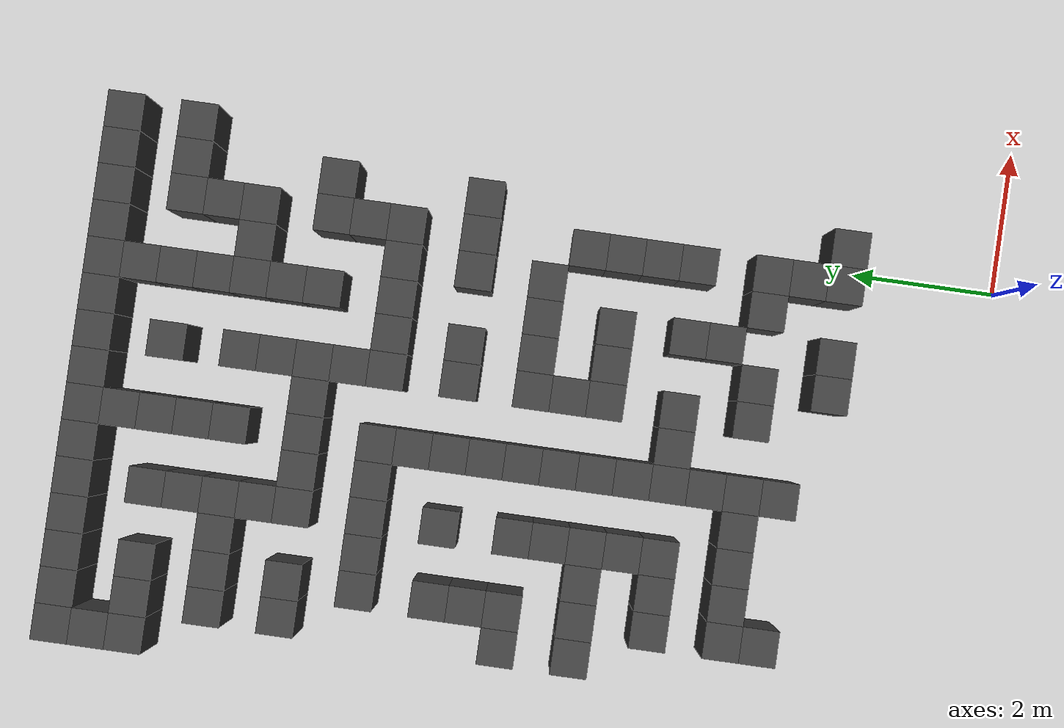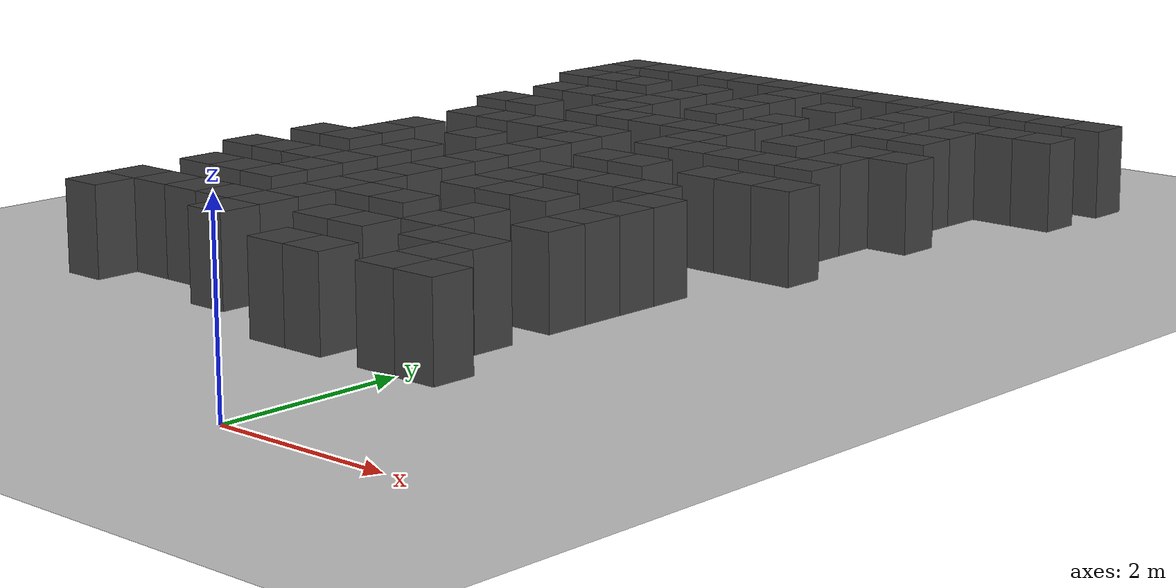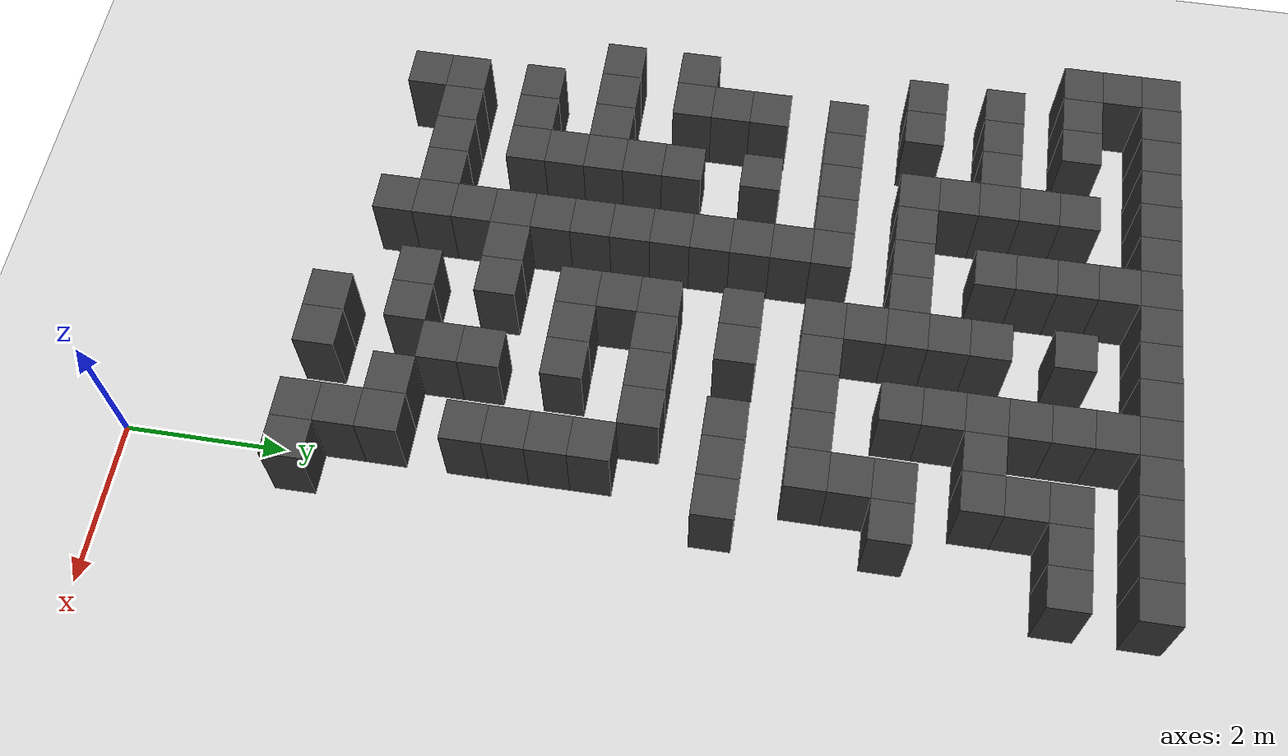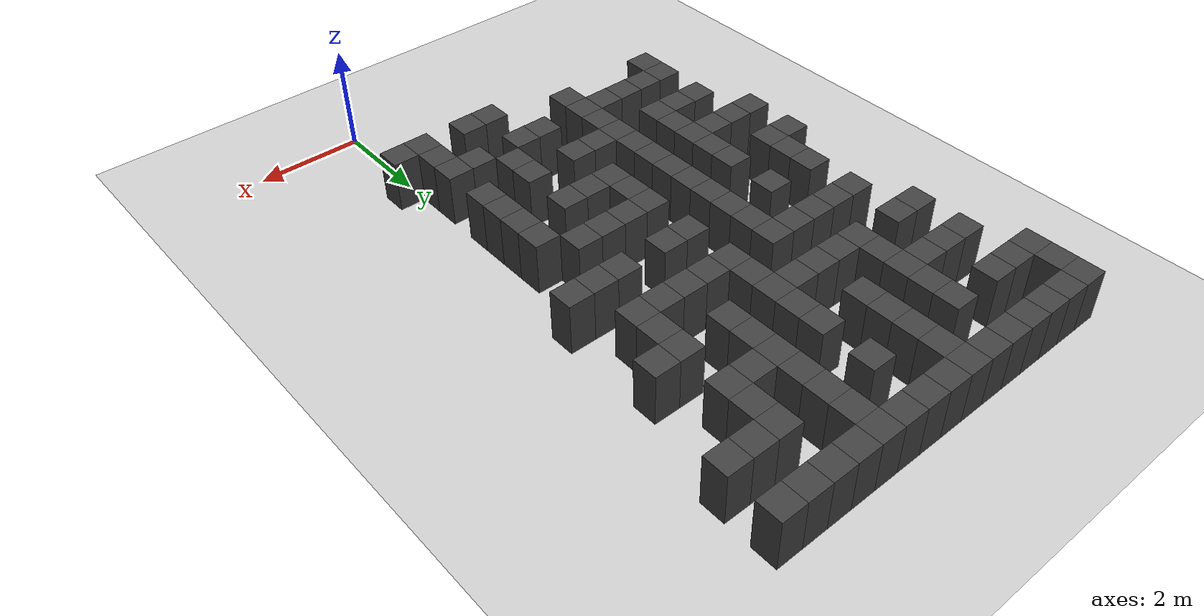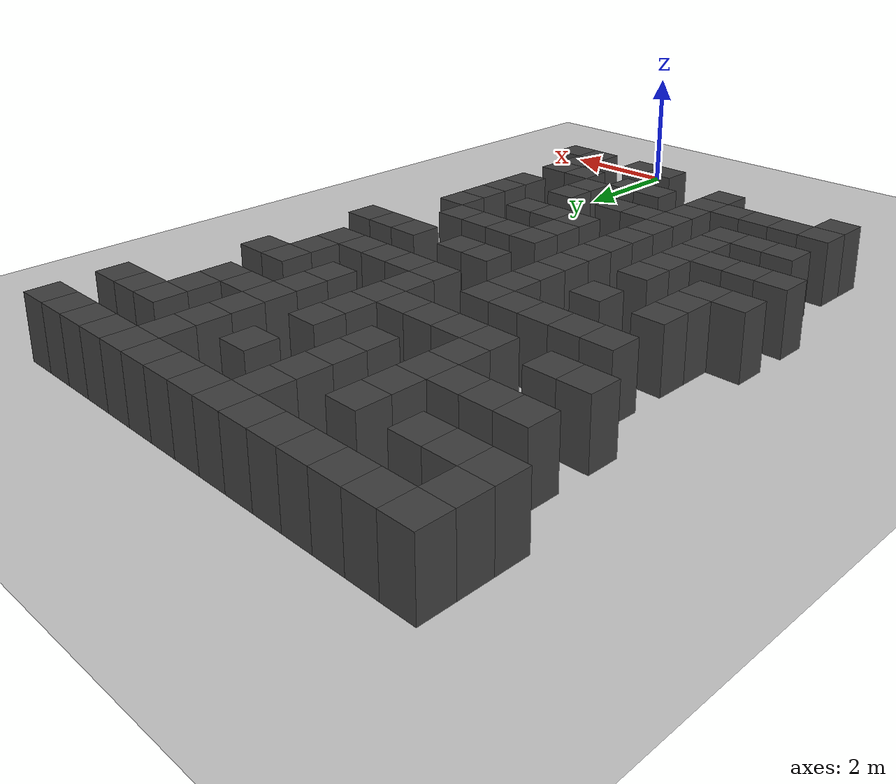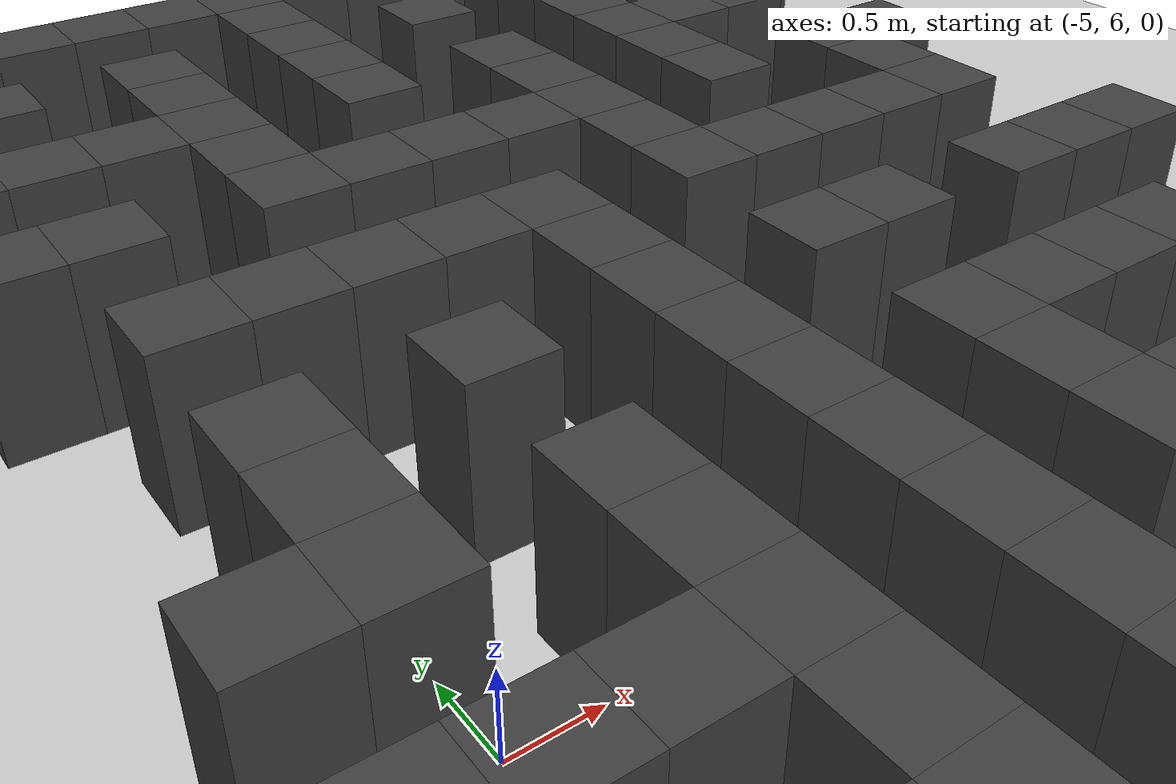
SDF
<sdf version="1.7">
 <world name="map_17663">
  <model name="ground_plane">
   <static>true</static>
   <link name="link">
    <collision name="collision">
     <geometry><plane><normal>0 0 1</normal><size>200 200</size></plane></geometry>
    </collision>
    <visual name="visual">
     <geometry><plane><normal>0 0 1</normal><size>200 200</size></plane></geometry>
     <material><ambient>0.8 0.8 0.8 1</ambient><diffuse>0.8 0.8 0.8 1</diffuse></material>
    </visual>
   </link>
  </model>
  <model name="maze_environment">
   <static>true</static>
   <link name="wall_12">
    <pose>-6.250 12.250 0.500 0 0 0</pose>
    <collision name="col"><geometry><box><size>0.5 0.5 1.0</size></box></geometry></collision>
    <visual name="vis">
     <geometry><box><size>0.5 0.5 1.0</size></box></geometry>
     <material><ambient>0.15 0.15 0.15 1</ambient><diffuse>0.25 0.25 0.25 1</diffuse></material>
    </visual>
   </link>
   <link name="wall_13">
    <pose>-5.750 12.250 0.500 0 0 0</pose>
    <collision name="col"><geometry><box><size>0.5 0.5 1.0</size></box></geometry></collision>
    <visual name="vis">
     <geometry><box><size>0.5 0.5 1.0</size></box></geometry>
     <material><ambient>0.15 0.15 0.15 1</ambient><diffuse>0.25 0.25 0.25 1</diffuse></material>
    </visual>
   </link>
   <link name="wall_14">
    <pose>-5.250 12.250 0.500 0 0 0</pose>
    <collision name="col"><geometry><box><size>0.5 0.5 1.0</size></box></geometry></collision>
    <visual name="vis">
     <geometry><box><size>0.5 0.5 1.0</size></box></geometry>
     <material><ambient>0.15 0.15 0.15 1</ambient><diffuse>0.25 0.25 0.25 1</diffuse></material>
    </visual>
   </link>
   <link name="wall_15">
    <pose>-4.750 12.250 0.500 0 0 0</pose>
    <collision name="col"><geometry><box><size>0.5 0.5 1.0</size></box></geometry></collision>
    <visual name="vis">
     <geometry><box><size>0.5 0.5 1.0</size></box></geometry>
     <material><ambient>0.15 0.15 0.15 1</ambient><diffuse>0.25 0.25 0.25 1</diffuse></material>
    </visual>
   </link>
   <link name="wall_16">
    <pose>-4.250 12.250 0.500 0 0 0</pose>
    <collision name="col"><geometry><box><size>0.5 0.5 1.0</size></box></geometry></collision>
    <visual name="vis">
     <geometry><box><size>0.5 0.5 1.0</size></box></geometry>
     <material><ambient>0.15 0.15 0.15 1</ambient><diffuse>0.25 0.25 0.25 1</diffuse></material>
    </visual>
   </link>
   <link name="wall_17">
    <pose>-3.750 12.250 0.500 0 0 0</pose>
    <collision name="col"><geometry><box><size>0.5 0.5 1.0</size></box></geometry></collision>
    <visual name="vis">
     <geometry><box><size>0.5 0.5 1.0</size></box></geometry>
     <material><ambient>0.15 0.15 0.15 1</ambient><diffuse>0.25 0.25 0.25 1</diffuse></material>
    </visual>
   </link>
   <link name="wall_18">
    <pose>-3.250 12.250 0.500 0 0 0</pose>
    <collision name="col"><geometry><box><size>0.5 0.5 1.0</size></box></geometry></collision>
    <visual name="vis">
     <geometry><box><size>0.5 0.5 1.0</size></box></geometry>
     <material><ambient>0.15 0.15 0.15 1</ambient><diffuse>0.25 0.25 0.25 1</diffuse></material>
    </visual>
   </link>
   <link name="wall_19">
    <pose>-2.750 12.250 0.500 0 0 0</pose>
    <collision name="col"><geometry><box><size>0.5 0.5 1.0</size></box></geometry></collision>
    <visual name="vis">
     <geometry><box><size>0.5 0.5 1.0</size></box></geometry>
     <material><ambient>0.15 0.15 0.15 1</ambient><diffuse>0.25 0.25 0.25 1</diffuse></material>
    </visual>
   </link>
   <link name="wall_20">
    <pose>-2.250 12.250 0.500 0 0 0</pose>
    <collision name="col"><geometry><box><size>0.5 0.5 1.0</size></box></geometry></collision>
    <visual name="vis">
     <geometry><box><size>0.5 0.5 1.0</size></box></geometry>
     <material><ambient>0.15 0.15 0.15 1</ambient><diffuse>0.25 0.25 0.25 1</diffuse></material>
    </visual>
   </link>
   <link name="wall_21">
    <pose>-1.750 12.250 0.500 0 0 0</pose>
    <collision name="col"><geometry><box><size>0.5 0.5 1.0</size></box></geometry></collision>
    <visual name="vis">
     <geometry><box><size>0.5 0.5 1.0</size></box></geometry>
     <material><ambient>0.15 0.15 0.15 1</ambient><diffuse>0.25 0.25 0.25 1</diffuse></material>
    </visual>
   </link>
   <link name="wall_22">
    <pose>-1.250 12.250 0.500 0 0 0</pose>
    <collision name="col"><geometry><box><size>0.5 0.5 1.0</size></box></geometry></collision>
    <visual name="vis">
     <geometry><box><size>0.5 0.5 1.0</size></box></geometry>
     <material><ambient>0.15 0.15 0.15 1</ambient><diffuse>0.25 0.25 0.25 1</diffuse></material>
    </visual>
   </link>
   <link name="wall_23">
    <pose>-0.750 12.250 0.500 0 0 0</pose>
    <collision name="col"><geometry><box><size>0.5 0.5 1.0</size></box></geometry></collision>
    <visual name="vis">
     <geometry><box><size>0.5 0.5 1.0</size></box></geometry>
     <material><ambient>0.15 0.15 0.15 1</ambient><diffuse>0.25 0.25 0.25 1</diffuse></material>
    </visual>
   </link>
   <link name="wall_24">
    <pose>-0.250 12.250 0.500 0 0 0</pose>
    <collision name="col"><geometry><box><size>0.5 0.5 1.0</size></box></geometry></collision>
    <visual name="vis">
     <geometry><box><size>0.5 0.5 1.0</size></box></geometry>
     <material><ambient>0.15 0.15 0.15 1</ambient><diffuse>0.25 0.25 0.25 1</diffuse></material>
    </visual>
   </link>
   <link name="wall_25">
    <pose>0.250 12.250 0.500 0 0 0</pose>
    <collision name="col"><geometry><box><size>0.5 0.5 1.0</size></box></geometry></collision>
    <visual name="vis">
     <geometry><box><size>0.5 0.5 1.0</size></box></geometry>
     <material><ambient>0.15 0.15 0.15 1</ambient><diffuse>0.25 0.25 0.25 1</diffuse></material>
    </visual>
   </link>
   <link name="wall_26">
    <pose>0.750 12.250 0.500 0 0 0</pose>
    <collision name="col"><geometry><box><size>0.5 0.5 1.0</size></box></geometry></collision>
    <visual name="vis">
     <geometry><box><size>0.5 0.5 1.0</size></box></geometry>
     <material><ambient>0.15 0.15 0.15 1</ambient><diffuse>0.25 0.25 0.25 1</diffuse></material>
    </visual>
   </link>
   <link name="wall_52">
    <pose>-6.250 11.750 0.500 0 0 0</pose>
    <collision name="col"><geometry><box><size>0.5 0.5 1.0</size></box></geometry></collision>
    <visual name="vis">
     <geometry><box><size>0.5 0.5 1.0</size></box></geometry>
     <material><ambient>0.15 0.15 0.15 1</ambient><diffuse>0.25 0.25 0.25 1</diffuse></material>
    </visual>
   </link>
   <link name="wall_53">
    <pose>-3.250 11.750 0.500 0 0 0</pose>
    <collision name="col"><geometry><box><size>0.5 0.5 1.0</size></box></geometry></collision>
    <visual name="vis">
     <geometry><box><size>0.5 0.5 1.0</size></box></geometry>
     <material><ambient>0.15 0.15 0.15 1</ambient><diffuse>0.25 0.25 0.25 1</diffuse></material>
    </visual>
   </link>
   <link name="wall_54">
    <pose>-1.250 11.750 0.500 0 0 0</pose>
    <collision name="col"><geometry><box><size>0.5 0.5 1.0</size></box></geometry></collision>
    <visual name="vis">
     <geometry><box><size>0.5 0.5 1.0</size></box></geometry>
     <material><ambient>0.15 0.15 0.15 1</ambient><diffuse>0.25 0.25 0.25 1</diffuse></material>
    </visual>
   </link>
   <link name="wall_66">
    <pose>-6.250 11.250 0.500 0 0 0</pose>
    <collision name="col"><geometry><box><size>0.5 0.5 1.0</size></box></geometry></collision>
    <visual name="vis">
     <geometry><box><size>0.5 0.5 1.0</size></box></geometry>
     <material><ambient>0.15 0.15 0.15 1</ambient><diffuse>0.25 0.25 0.25 1</diffuse></material>
    </visual>
   </link>
   <link name="wall_67">
    <pose>-5.750 11.250 0.500 0 0 0</pose>
    <collision name="col"><geometry><box><size>0.5 0.5 1.0</size></box></geometry></collision>
    <visual name="vis">
     <geometry><box><size>0.5 0.5 1.0</size></box></geometry>
     <material><ambient>0.15 0.15 0.15 1</ambient><diffuse>0.25 0.25 0.25 1</diffuse></material>
    </visual>
   </link>
   <link name="wall_68">
    <pose>-5.250 11.250 0.500 0 0 0</pose>
    <collision name="col"><geometry><box><size>0.5 0.5 1.0</size></box></geometry></collision>
    <visual name="vis">
     <geometry><box><size>0.5 0.5 1.0</size></box></geometry>
     <material><ambient>0.15 0.15 0.15 1</ambient><diffuse>0.25 0.25 0.25 1</diffuse></material>
    </visual>
   </link>
   <link name="wall_69">
    <pose>-4.250 11.250 0.500 0 0 0</pose>
    <collision name="col"><geometry><box><size>0.5 0.5 1.0</size></box></geometry></collision>
    <visual name="vis">
     <geometry><box><size>0.5 0.5 1.0</size></box></geometry>
     <material><ambient>0.15 0.15 0.15 1</ambient><diffuse>0.25 0.25 0.25 1</diffuse></material>
    </visual>
   </link>
   <link name="wall_70">
    <pose>-3.250 11.250 0.500 0 0 0</pose>
    <collision name="col"><geometry><box><size>0.5 0.5 1.0</size></box></geometry></collision>
    <visual name="vis">
     <geometry><box><size>0.5 0.5 1.0</size></box></geometry>
     <material><ambient>0.15 0.15 0.15 1</ambient><diffuse>0.25 0.25 0.25 1</diffuse></material>
    </visual>
   </link>
   <link name="wall_71">
    <pose>-2.250 11.250 0.500 0 0 0</pose>
    <collision name="col"><geometry><box><size>0.5 0.5 1.0</size></box></geometry></collision>
    <visual name="vis">
     <geometry><box><size>0.5 0.5 1.0</size></box></geometry>
     <material><ambient>0.15 0.15 0.15 1</ambient><diffuse>0.25 0.25 0.25 1</diffuse></material>
    </visual>
   </link>
   <link name="wall_72">
    <pose>-1.250 11.250 0.500 0 0 0</pose>
    <collision name="col"><geometry><box><size>0.5 0.5 1.0</size></box></geometry></collision>
    <visual name="vis">
     <geometry><box><size>0.5 0.5 1.0</size></box></geometry>
     <material><ambient>0.15 0.15 0.15 1</ambient><diffuse>0.25 0.25 0.25 1</diffuse></material>
    </visual>
   </link>
   <link name="wall_73">
    <pose>-0.250 11.250 0.500 0 0 0</pose>
    <collision name="col"><geometry><box><size>0.5 0.5 1.0</size></box></geometry></collision>
    <visual name="vis">
     <geometry><box><size>0.5 0.5 1.0</size></box></geometry>
     <material><ambient>0.15 0.15 0.15 1</ambient><diffuse>0.25 0.25 0.25 1</diffuse></material>
    </visual>
   </link>
   <link name="wall_74">
    <pose>0.250 11.250 0.500 0 0 0</pose>
    <collision name="col"><geometry><box><size>0.5 0.5 1.0</size></box></geometry></collision>
    <visual name="vis">
     <geometry><box><size>0.5 0.5 1.0</size></box></geometry>
     <material><ambient>0.15 0.15 0.15 1</ambient><diffuse>0.25 0.25 0.25 1</diffuse></material>
    </visual>
   </link>
   <link name="wall_75">
    <pose>0.750 11.250 0.500 0 0 0</pose>
    <collision name="col"><geometry><box><size>0.5 0.5 1.0</size></box></geometry></collision>
    <visual name="vis">
     <geometry><box><size>0.5 0.5 1.0</size></box></geometry>
     <material><ambient>0.15 0.15 0.15 1</ambient><diffuse>0.25 0.25 0.25 1</diffuse></material>
    </visual>
   </link>
   <link name="wall_95">
    <pose>-4.250 10.750 0.500 0 0 0</pose>
    <collision name="col"><geometry><box><size>0.5 0.5 1.0</size></box></geometry></collision>
    <visual name="vis">
     <geometry><box><size>0.5 0.5 1.0</size></box></geometry>
     <material><ambient>0.15 0.15 0.15 1</ambient><diffuse>0.25 0.25 0.25 1</diffuse></material>
    </visual>
   </link>
   <link name="wall_96">
    <pose>-3.250 10.750 0.500 0 0 0</pose>
    <collision name="col"><geometry><box><size>0.5 0.5 1.0</size></box></geometry></collision>
    <visual name="vis">
     <geometry><box><size>0.5 0.5 1.0</size></box></geometry>
     <material><ambient>0.15 0.15 0.15 1</ambient><diffuse>0.25 0.25 0.25 1</diffuse></material>
    </visual>
   </link>
   <link name="wall_97">
    <pose>-1.250 10.750 0.500 0 0 0</pose>
    <collision name="col"><geometry><box><size>0.5 0.5 1.0</size></box></geometry></collision>
    <visual name="vis">
     <geometry><box><size>0.5 0.5 1.0</size></box></geometry>
     <material><ambient>0.15 0.15 0.15 1</ambient><diffuse>0.25 0.25 0.25 1</diffuse></material>
    </visual>
   </link>
   <link name="wall_98">
    <pose>-0.250 10.750 0.500 0 0 0</pose>
    <collision name="col"><geometry><box><size>0.5 0.5 1.0</size></box></geometry></collision>
    <visual name="vis">
     <geometry><box><size>0.5 0.5 1.0</size></box></geometry>
     <material><ambient>0.15 0.15 0.15 1</ambient><diffuse>0.25 0.25 0.25 1</diffuse></material>
    </visual>
   </link>
   <link name="wall_113">
    <pose>-5.750 10.250 0.500 0 0 0</pose>
    <collision name="col"><geometry><box><size>0.5 0.5 1.0</size></box></geometry></collision>
    <visual name="vis">
     <geometry><box><size>0.5 0.5 1.0</size></box></geometry>
     <material><ambient>0.15 0.15 0.15 1</ambient><diffuse>0.25 0.25 0.25 1</diffuse></material>
    </visual>
   </link>
   <link name="wall_114">
    <pose>-5.250 10.250 0.500 0 0 0</pose>
    <collision name="col"><geometry><box><size>0.5 0.5 1.0</size></box></geometry></collision>
    <visual name="vis">
     <geometry><box><size>0.5 0.5 1.0</size></box></geometry>
     <material><ambient>0.15 0.15 0.15 1</ambient><diffuse>0.25 0.25 0.25 1</diffuse></material>
    </visual>
   </link>
   <link name="wall_115">
    <pose>-4.750 10.250 0.500 0 0 0</pose>
    <collision name="col"><geometry><box><size>0.5 0.5 1.0</size></box></geometry></collision>
    <visual name="vis">
     <geometry><box><size>0.5 0.5 1.0</size></box></geometry>
     <material><ambient>0.15 0.15 0.15 1</ambient><diffuse>0.25 0.25 0.25 1</diffuse></material>
    </visual>
   </link>
   <link name="wall_116">
    <pose>-4.250 10.250 0.500 0 0 0</pose>
    <collision name="col"><geometry><box><size>0.5 0.5 1.0</size></box></geometry></collision>
    <visual name="vis">
     <geometry><box><size>0.5 0.5 1.0</size></box></geometry>
     <material><ambient>0.15 0.15 0.15 1</ambient><diffuse>0.25 0.25 0.25 1</diffuse></material>
    </visual>
   </link>
   <link name="wall_117">
    <pose>-3.250 10.250 0.500 0 0 0</pose>
    <collision name="col"><geometry><box><size>0.5 0.5 1.0</size></box></geometry></collision>
    <visual name="vis">
     <geometry><box><size>0.5 0.5 1.0</size></box></geometry>
     <material><ambient>0.15 0.15 0.15 1</ambient><diffuse>0.25 0.25 0.25 1</diffuse></material>
    </visual>
   </link>
   <link name="wall_118">
    <pose>-2.250 10.250 0.500 0 0 0</pose>
    <collision name="col"><geometry><box><size>0.5 0.5 1.0</size></box></geometry></collision>
    <visual name="vis">
     <geometry><box><size>0.5 0.5 1.0</size></box></geometry>
     <material><ambient>0.15 0.15 0.15 1</ambient><diffuse>0.25 0.25 0.25 1</diffuse></material>
    </visual>
   </link>
   <link name="wall_119">
    <pose>-1.250 10.250 0.500 0 0 0</pose>
    <collision name="col"><geometry><box><size>0.5 0.5 1.0</size></box></geometry></collision>
    <visual name="vis">
     <geometry><box><size>0.5 0.5 1.0</size></box></geometry>
     <material><ambient>0.15 0.15 0.15 1</ambient><diffuse>0.25 0.25 0.25 1</diffuse></material>
    </visual>
   </link>
   <link name="wall_120">
    <pose>-0.750 10.250 0.500 0 0 0</pose>
    <collision name="col"><geometry><box><size>0.5 0.5 1.0</size></box></geometry></collision>
    <visual name="vis">
     <geometry><box><size>0.5 0.5 1.0</size></box></geometry>
     <material><ambient>0.15 0.15 0.15 1</ambient><diffuse>0.25 0.25 0.25 1</diffuse></material>
    </visual>
   </link>
   <link name="wall_121">
    <pose>-0.250 10.250 0.500 0 0 0</pose>
    <collision name="col"><geometry><box><size>0.5 0.5 1.0</size></box></geometry></collision>
    <visual name="vis">
     <geometry><box><size>0.5 0.5 1.0</size></box></geometry>
     <material><ambient>0.15 0.15 0.15 1</ambient><diffuse>0.25 0.25 0.25 1</diffuse></material>
    </visual>
   </link>
   <link name="wall_143">
    <pose>-4.250 9.750 0.500 0 0 0</pose>
    <collision name="col"><geometry><box><size>0.5 0.5 1.0</size></box></geometry></collision>
    <visual name="vis">
     <geometry><box><size>0.5 0.5 1.0</size></box></geometry>
     <material><ambient>0.15 0.15 0.15 1</ambient><diffuse>0.25 0.25 0.25 1</diffuse></material>
    </visual>
   </link>
   <link name="wall_144">
    <pose>-2.250 9.750 0.500 0 0 0</pose>
    <collision name="col"><geometry><box><size>0.5 0.5 1.0</size></box></geometry></collision>
    <visual name="vis">
     <geometry><box><size>0.5 0.5 1.0</size></box></geometry>
     <material><ambient>0.15 0.15 0.15 1</ambient><diffuse>0.25 0.25 0.25 1</diffuse></material>
    </visual>
   </link>
   <link name="wall_145">
    <pose>-1.250 9.750 0.500 0 0 0</pose>
    <collision name="col"><geometry><box><size>0.5 0.5 1.0</size></box></geometry></collision>
    <visual name="vis">
     <geometry><box><size>0.5 0.5 1.0</size></box></geometry>
     <material><ambient>0.15 0.15 0.15 1</ambient><diffuse>0.25 0.25 0.25 1</diffuse></material>
    </visual>
   </link>
   <link name="wall_163">
    <pose>-5.750 9.250 0.500 0 0 0</pose>
    <collision name="col"><geometry><box><size>0.5 0.5 1.0</size></box></geometry></collision>
    <visual name="vis">
     <geometry><box><size>0.5 0.5 1.0</size></box></geometry>
     <material><ambient>0.15 0.15 0.15 1</ambient><diffuse>0.25 0.25 0.25 1</diffuse></material>
    </visual>
   </link>
   <link name="wall_164">
    <pose>-5.250 9.250 0.500 0 0 0</pose>
    <collision name="col"><geometry><box><size>0.5 0.5 1.0</size></box></geometry></collision>
    <visual name="vis">
     <geometry><box><size>0.5 0.5 1.0</size></box></geometry>
     <material><ambient>0.15 0.15 0.15 1</ambient><diffuse>0.25 0.25 0.25 1</diffuse></material>
    </visual>
   </link>
   <link name="wall_165">
    <pose>-4.250 9.250 0.500 0 0 0</pose>
    <collision name="col"><geometry><box><size>0.5 0.5 1.0</size></box></geometry></collision>
    <visual name="vis">
     <geometry><box><size>0.5 0.5 1.0</size></box></geometry>
     <material><ambient>0.15 0.15 0.15 1</ambient><diffuse>0.25 0.25 0.25 1</diffuse></material>
    </visual>
   </link>
   <link name="wall_166">
    <pose>-3.750 9.250 0.500 0 0 0</pose>
    <collision name="col"><geometry><box><size>0.5 0.5 1.0</size></box></geometry></collision>
    <visual name="vis">
     <geometry><box><size>0.5 0.5 1.0</size></box></geometry>
     <material><ambient>0.15 0.15 0.15 1</ambient><diffuse>0.25 0.25 0.25 1</diffuse></material>
    </visual>
   </link>
   <link name="wall_167">
    <pose>-3.250 9.250 0.500 0 0 0</pose>
    <collision name="col"><geometry><box><size>0.5 0.5 1.0</size></box></geometry></collision>
    <visual name="vis">
     <geometry><box><size>0.5 0.5 1.0</size></box></geometry>
     <material><ambient>0.15 0.15 0.15 1</ambient><diffuse>0.25 0.25 0.25 1</diffuse></material>
    </visual>
   </link>
   <link name="wall_168">
    <pose>-2.750 9.250 0.500 0 0 0</pose>
    <collision name="col"><geometry><box><size>0.5 0.5 1.0</size></box></geometry></collision>
    <visual name="vis">
     <geometry><box><size>0.5 0.5 1.0</size></box></geometry>
     <material><ambient>0.15 0.15 0.15 1</ambient><diffuse>0.25 0.25 0.25 1</diffuse></material>
    </visual>
   </link>
   <link name="wall_169">
    <pose>-2.250 9.250 0.500 0 0 0</pose>
    <collision name="col"><geometry><box><size>0.5 0.5 1.0</size></box></geometry></collision>
    <visual name="vis">
     <geometry><box><size>0.5 0.5 1.0</size></box></geometry>
     <material><ambient>0.15 0.15 0.15 1</ambient><diffuse>0.25 0.25 0.25 1</diffuse></material>
    </visual>
   </link>
   <link name="wall_170">
    <pose>-1.250 9.250 0.500 0 0 0</pose>
    <collision name="col"><geometry><box><size>0.5 0.5 1.0</size></box></geometry></collision>
    <visual name="vis">
     <geometry><box><size>0.5 0.5 1.0</size></box></geometry>
     <material><ambient>0.15 0.15 0.15 1</ambient><diffuse>0.25 0.25 0.25 1</diffuse></material>
    </visual>
   </link>
   <link name="wall_171">
    <pose>-0.250 9.250 0.500 0 0 0</pose>
    <collision name="col"><geometry><box><size>0.5 0.5 1.0</size></box></geometry></collision>
    <visual name="vis">
     <geometry><box><size>0.5 0.5 1.0</size></box></geometry>
     <material><ambient>0.15 0.15 0.15 1</ambient><diffuse>0.25 0.25 0.25 1</diffuse></material>
    </visual>
   </link>
   <link name="wall_172">
    <pose>0.250 9.250 0.500 0 0 0</pose>
    <collision name="col"><geometry><box><size>0.5 0.5 1.0</size></box></geometry></collision>
    <visual name="vis">
     <geometry><box><size>0.5 0.5 1.0</size></box></geometry>
     <material><ambient>0.15 0.15 0.15 1</ambient><diffuse>0.25 0.25 0.25 1</diffuse></material>
    </visual>
   </link>
   <link name="wall_192">
    <pose>-2.250 8.750 0.500 0 0 0</pose>
    <collision name="col"><geometry><box><size>0.5 0.5 1.0</size></box></geometry></collision>
    <visual name="vis">
     <geometry><box><size>0.5 0.5 1.0</size></box></geometry>
     <material><ambient>0.15 0.15 0.15 1</ambient><diffuse>0.25 0.25 0.25 1</diffuse></material>
    </visual>
   </link>
   <link name="wall_193">
    <pose>-0.250 8.750 0.500 0 0 0</pose>
    <collision name="col"><geometry><box><size>0.5 0.5 1.0</size></box></geometry></collision>
    <visual name="vis">
     <geometry><box><size>0.5 0.5 1.0</size></box></geometry>
     <material><ambient>0.15 0.15 0.15 1</ambient><diffuse>0.25 0.25 0.25 1</diffuse></material>
    </visual>
   </link>
   <link name="wall_213">
    <pose>-5.250 8.250 0.500 0 0 0</pose>
    <collision name="col"><geometry><box><size>0.5 0.5 1.0</size></box></geometry></collision>
    <visual name="vis">
     <geometry><box><size>0.5 0.5 1.0</size></box></geometry>
     <material><ambient>0.15 0.15 0.15 1</ambient><diffuse>0.25 0.25 0.25 1</diffuse></material>
    </visual>
   </link>
   <link name="wall_214">
    <pose>-4.750 8.250 0.500 0 0 0</pose>
    <collision name="col"><geometry><box><size>0.5 0.5 1.0</size></box></geometry></collision>
    <visual name="vis">
     <geometry><box><size>0.5 0.5 1.0</size></box></geometry>
     <material><ambient>0.15 0.15 0.15 1</ambient><diffuse>0.25 0.25 0.25 1</diffuse></material>
    </visual>
   </link>
   <link name="wall_215">
    <pose>-4.250 8.250 0.500 0 0 0</pose>
    <collision name="col"><geometry><box><size>0.5 0.5 1.0</size></box></geometry></collision>
    <visual name="vis">
     <geometry><box><size>0.5 0.5 1.0</size></box></geometry>
     <material><ambient>0.15 0.15 0.15 1</ambient><diffuse>0.25 0.25 0.25 1</diffuse></material>
    </visual>
   </link>
   <link name="wall_216">
    <pose>-3.750 8.250 0.500 0 0 0</pose>
    <collision name="col"><geometry><box><size>0.5 0.5 1.0</size></box></geometry></collision>
    <visual name="vis">
     <geometry><box><size>0.5 0.5 1.0</size></box></geometry>
     <material><ambient>0.15 0.15 0.15 1</ambient><diffuse>0.25 0.25 0.25 1</diffuse></material>
    </visual>
   </link>
   <link name="wall_217">
    <pose>-3.250 8.250 0.500 0 0 0</pose>
    <collision name="col"><geometry><box><size>0.5 0.5 1.0</size></box></geometry></collision>
    <visual name="vis">
     <geometry><box><size>0.5 0.5 1.0</size></box></geometry>
     <material><ambient>0.15 0.15 0.15 1</ambient><diffuse>0.25 0.25 0.25 1</diffuse></material>
    </visual>
   </link>
   <link name="wall_218">
    <pose>-2.250 8.250 0.500 0 0 0</pose>
    <collision name="col"><geometry><box><size>0.5 0.5 1.0</size></box></geometry></collision>
    <visual name="vis">
     <geometry><box><size>0.5 0.5 1.0</size></box></geometry>
     <material><ambient>0.15 0.15 0.15 1</ambient><diffuse>0.25 0.25 0.25 1</diffuse></material>
    </visual>
   </link>
   <link name="wall_219">
    <pose>-1.750 8.250 0.500 0 0 0</pose>
    <collision name="col"><geometry><box><size>0.5 0.5 1.0</size></box></geometry></collision>
    <visual name="vis">
     <geometry><box><size>0.5 0.5 1.0</size></box></geometry>
     <material><ambient>0.15 0.15 0.15 1</ambient><diffuse>0.25 0.25 0.25 1</diffuse></material>
    </visual>
   </link>
   <link name="wall_220">
    <pose>-1.250 8.250 0.500 0 0 0</pose>
    <collision name="col"><geometry><box><size>0.5 0.5 1.0</size></box></geometry></collision>
    <visual name="vis">
     <geometry><box><size>0.5 0.5 1.0</size></box></geometry>
     <material><ambient>0.15 0.15 0.15 1</ambient><diffuse>0.25 0.25 0.25 1</diffuse></material>
    </visual>
   </link>
   <link name="wall_221">
    <pose>-0.750 8.250 0.500 0 0 0</pose>
    <collision name="col"><geometry><box><size>0.5 0.5 1.0</size></box></geometry></collision>
    <visual name="vis">
     <geometry><box><size>0.5 0.5 1.0</size></box></geometry>
     <material><ambient>0.15 0.15 0.15 1</ambient><diffuse>0.25 0.25 0.25 1</diffuse></material>
    </visual>
   </link>
   <link name="wall_222">
    <pose>-0.250 8.250 0.500 0 0 0</pose>
    <collision name="col"><geometry><box><size>0.5 0.5 1.0</size></box></geometry></collision>
    <visual name="vis">
     <geometry><box><size>0.5 0.5 1.0</size></box></geometry>
     <material><ambient>0.15 0.15 0.15 1</ambient><diffuse>0.25 0.25 0.25 1</diffuse></material>
    </visual>
   </link>
   <link name="wall_245">
    <pose>-3.250 7.750 0.500 0 0 0</pose>
    <collision name="col"><geometry><box><size>0.5 0.5 1.0</size></box></geometry></collision>
    <visual name="vis">
     <geometry><box><size>0.5 0.5 1.0</size></box></geometry>
     <material><ambient>0.15 0.15 0.15 1</ambient><diffuse>0.25 0.25 0.25 1</diffuse></material>
    </visual>
   </link>
   <link name="wall_264">
    <pose>-5.250 7.250 0.500 0 0 0</pose>
    <collision name="col"><geometry><box><size>0.5 0.5 1.0</size></box></geometry></collision>
    <visual name="vis">
     <geometry><box><size>0.5 0.5 1.0</size></box></geometry>
     <material><ambient>0.15 0.15 0.15 1</ambient><diffuse>0.25 0.25 0.25 1</diffuse></material>
    </visual>
   </link>
   <link name="wall_265">
    <pose>-4.250 7.250 0.500 0 0 0</pose>
    <collision name="col"><geometry><box><size>0.5 0.5 1.0</size></box></geometry></collision>
    <visual name="vis">
     <geometry><box><size>0.5 0.5 1.0</size></box></geometry>
     <material><ambient>0.15 0.15 0.15 1</ambient><diffuse>0.25 0.25 0.25 1</diffuse></material>
    </visual>
   </link>
   <link name="wall_266">
    <pose>-3.250 7.250 0.500 0 0 0</pose>
    <collision name="col"><geometry><box><size>0.5 0.5 1.0</size></box></geometry></collision>
    <visual name="vis">
     <geometry><box><size>0.5 0.5 1.0</size></box></geometry>
     <material><ambient>0.15 0.15 0.15 1</ambient><diffuse>0.25 0.25 0.25 1</diffuse></material>
    </visual>
   </link>
   <link name="wall_267">
    <pose>-2.250 7.250 0.500 0 0 0</pose>
    <collision name="col"><geometry><box><size>0.5 0.5 1.0</size></box></geometry></collision>
    <visual name="vis">
     <geometry><box><size>0.5 0.5 1.0</size></box></geometry>
     <material><ambient>0.15 0.15 0.15 1</ambient><diffuse>0.25 0.25 0.25 1</diffuse></material>
    </visual>
   </link>
   <link name="wall_268">
    <pose>-1.750 7.250 0.500 0 0 0</pose>
    <collision name="col"><geometry><box><size>0.5 0.5 1.0</size></box></geometry></collision>
    <visual name="vis">
     <geometry><box><size>0.5 0.5 1.0</size></box></geometry>
     <material><ambient>0.15 0.15 0.15 1</ambient><diffuse>0.25 0.25 0.25 1</diffuse></material>
    </visual>
   </link>
   <link name="wall_269">
    <pose>-0.750 7.250 0.500 0 0 0</pose>
    <collision name="col"><geometry><box><size>0.5 0.5 1.0</size></box></geometry></collision>
    <visual name="vis">
     <geometry><box><size>0.5 0.5 1.0</size></box></geometry>
     <material><ambient>0.15 0.15 0.15 1</ambient><diffuse>0.25 0.25 0.25 1</diffuse></material>
    </visual>
   </link>
   <link name="wall_270">
    <pose>-0.250 7.250 0.500 0 0 0</pose>
    <collision name="col"><geometry><box><size>0.5 0.5 1.0</size></box></geometry></collision>
    <visual name="vis">
     <geometry><box><size>0.5 0.5 1.0</size></box></geometry>
     <material><ambient>0.15 0.15 0.15 1</ambient><diffuse>0.25 0.25 0.25 1</diffuse></material>
    </visual>
   </link>
   <link name="wall_271">
    <pose>0.250 7.250 0.500 0 0 0</pose>
    <collision name="col"><geometry><box><size>0.5 0.5 1.0</size></box></geometry></collision>
    <visual name="vis">
     <geometry><box><size>0.5 0.5 1.0</size></box></geometry>
     <material><ambient>0.15 0.15 0.15 1</ambient><diffuse>0.25 0.25 0.25 1</diffuse></material>
    </visual>
   </link>
   <link name="wall_292">
    <pose>-5.250 6.750 0.500 0 0 0</pose>
    <collision name="col"><geometry><box><size>0.5 0.5 1.0</size></box></geometry></collision>
    <visual name="vis">
     <geometry><box><size>0.5 0.5 1.0</size></box></geometry>
     <material><ambient>0.15 0.15 0.15 1</ambient><diffuse>0.25 0.25 0.25 1</diffuse></material>
    </visual>
   </link>
   <link name="wall_293">
    <pose>-3.250 6.750 0.500 0 0 0</pose>
    <collision name="col"><geometry><box><size>0.5 0.5 1.0</size></box></geometry></collision>
    <visual name="vis">
     <geometry><box><size>0.5 0.5 1.0</size></box></geometry>
     <material><ambient>0.15 0.15 0.15 1</ambient><diffuse>0.25 0.25 0.25 1</diffuse></material>
    </visual>
   </link>
   <link name="wall_309">
    <pose>-5.750 6.250 0.500 0 0 0</pose>
    <collision name="col"><geometry><box><size>0.5 0.5 1.0</size></box></geometry></collision>
    <visual name="vis">
     <geometry><box><size>0.5 0.5 1.0</size></box></geometry>
     <material><ambient>0.15 0.15 0.15 1</ambient><diffuse>0.25 0.25 0.25 1</diffuse></material>
    </visual>
   </link>
   <link name="wall_310">
    <pose>-5.250 6.250 0.500 0 0 0</pose>
    <collision name="col"><geometry><box><size>0.5 0.5 1.0</size></box></geometry></collision>
    <visual name="vis">
     <geometry><box><size>0.5 0.5 1.0</size></box></geometry>
     <material><ambient>0.15 0.15 0.15 1</ambient><diffuse>0.25 0.25 0.25 1</diffuse></material>
    </visual>
   </link>
   <link name="wall_311">
    <pose>-4.250 6.250 0.500 0 0 0</pose>
    <collision name="col"><geometry><box><size>0.5 0.5 1.0</size></box></geometry></collision>
    <visual name="vis">
     <geometry><box><size>0.5 0.5 1.0</size></box></geometry>
     <material><ambient>0.15 0.15 0.15 1</ambient><diffuse>0.25 0.25 0.25 1</diffuse></material>
    </visual>
   </link>
   <link name="wall_312">
    <pose>-3.250 6.250 0.500 0 0 0</pose>
    <collision name="col"><geometry><box><size>0.5 0.5 1.0</size></box></geometry></collision>
    <visual name="vis">
     <geometry><box><size>0.5 0.5 1.0</size></box></geometry>
     <material><ambient>0.15 0.15 0.15 1</ambient><diffuse>0.25 0.25 0.25 1</diffuse></material>
    </visual>
   </link>
   <link name="wall_313">
    <pose>-2.250 6.250 0.500 0 0 0</pose>
    <collision name="col"><geometry><box><size>0.5 0.5 1.0</size></box></geometry></collision>
    <visual name="vis">
     <geometry><box><size>0.5 0.5 1.0</size></box></geometry>
     <material><ambient>0.15 0.15 0.15 1</ambient><diffuse>0.25 0.25 0.25 1</diffuse></material>
    </visual>
   </link>
   <link name="wall_314">
    <pose>-1.750 6.250 0.500 0 0 0</pose>
    <collision name="col"><geometry><box><size>0.5 0.5 1.0</size></box></geometry></collision>
    <visual name="vis">
     <geometry><box><size>0.5 0.5 1.0</size></box></geometry>
     <material><ambient>0.15 0.15 0.15 1</ambient><diffuse>0.25 0.25 0.25 1</diffuse></material>
    </visual>
   </link>
   <link name="wall_315">
    <pose>-1.250 6.250 0.500 0 0 0</pose>
    <collision name="col"><geometry><box><size>0.5 0.5 1.0</size></box></geometry></collision>
    <visual name="vis">
     <geometry><box><size>0.5 0.5 1.0</size></box></geometry>
     <material><ambient>0.15 0.15 0.15 1</ambient><diffuse>0.25 0.25 0.25 1</diffuse></material>
    </visual>
   </link>
   <link name="wall_316">
    <pose>-0.750 6.250 0.500 0 0 0</pose>
    <collision name="col"><geometry><box><size>0.5 0.5 1.0</size></box></geometry></collision>
    <visual name="vis">
     <geometry><box><size>0.5 0.5 1.0</size></box></geometry>
     <material><ambient>0.15 0.15 0.15 1</ambient><diffuse>0.25 0.25 0.25 1</diffuse></material>
    </visual>
   </link>
   <link name="wall_335">
    <pose>-4.250 5.750 0.500 0 0 0</pose>
    <collision name="col"><geometry><box><size>0.5 0.5 1.0</size></box></geometry></collision>
    <visual name="vis">
     <geometry><box><size>0.5 0.5 1.0</size></box></geometry>
     <material><ambient>0.15 0.15 0.15 1</ambient><diffuse>0.25 0.25 0.25 1</diffuse></material>
    </visual>
   </link>
   <link name="wall_336">
    <pose>-3.250 5.750 0.500 0 0 0</pose>
    <collision name="col"><geometry><box><size>0.5 0.5 1.0</size></box></geometry></collision>
    <visual name="vis">
     <geometry><box><size>0.5 0.5 1.0</size></box></geometry>
     <material><ambient>0.15 0.15 0.15 1</ambient><diffuse>0.25 0.25 0.25 1</diffuse></material>
    </visual>
   </link>
   <link name="wall_337">
    <pose>-2.250 5.750 0.500 0 0 0</pose>
    <collision name="col"><geometry><box><size>0.5 0.5 1.0</size></box></geometry></collision>
    <visual name="vis">
     <geometry><box><size>0.5 0.5 1.0</size></box></geometry>
     <material><ambient>0.15 0.15 0.15 1</ambient><diffuse>0.25 0.25 0.25 1</diffuse></material>
    </visual>
   </link>
   <link name="wall_338">
    <pose>-0.250 5.750 0.500 0 0 0</pose>
    <collision name="col"><geometry><box><size>0.5 0.5 1.0</size></box></geometry></collision>
    <visual name="vis">
     <geometry><box><size>0.5 0.5 1.0</size></box></geometry>
     <material><ambient>0.15 0.15 0.15 1</ambient><diffuse>0.25 0.25 0.25 1</diffuse></material>
    </visual>
   </link>
   <link name="wall_358">
    <pose>-5.750 5.250 0.500 0 0 0</pose>
    <collision name="col"><geometry><box><size>0.5 0.5 1.0</size></box></geometry></collision>
    <visual name="vis">
     <geometry><box><size>0.5 0.5 1.0</size></box></geometry>
     <material><ambient>0.15 0.15 0.15 1</ambient><diffuse>0.25 0.25 0.25 1</diffuse></material>
    </visual>
   </link>
   <link name="wall_359">
    <pose>-5.250 5.250 0.500 0 0 0</pose>
    <collision name="col"><geometry><box><size>0.5 0.5 1.0</size></box></geometry></collision>
    <visual name="vis">
     <geometry><box><size>0.5 0.5 1.0</size></box></geometry>
     <material><ambient>0.15 0.15 0.15 1</ambient><diffuse>0.25 0.25 0.25 1</diffuse></material>
    </visual>
   </link>
   <link name="wall_360">
    <pose>-4.750 5.250 0.500 0 0 0</pose>
    <collision name="col"><geometry><box><size>0.5 0.5 1.0</size></box></geometry></collision>
    <visual name="vis">
     <geometry><box><size>0.5 0.5 1.0</size></box></geometry>
     <material><ambient>0.15 0.15 0.15 1</ambient><diffuse>0.25 0.25 0.25 1</diffuse></material>
    </visual>
   </link>
   <link name="wall_361">
    <pose>-4.250 5.250 0.500 0 0 0</pose>
    <collision name="col"><geometry><box><size>0.5 0.5 1.0</size></box></geometry></collision>
    <visual name="vis">
     <geometry><box><size>0.5 0.5 1.0</size></box></geometry>
     <material><ambient>0.15 0.15 0.15 1</ambient><diffuse>0.25 0.25 0.25 1</diffuse></material>
    </visual>
   </link>
   <link name="wall_362">
    <pose>-3.250 5.250 0.500 0 0 0</pose>
    <collision name="col"><geometry><box><size>0.5 0.5 1.0</size></box></geometry></collision>
    <visual name="vis">
     <geometry><box><size>0.5 0.5 1.0</size></box></geometry>
     <material><ambient>0.15 0.15 0.15 1</ambient><diffuse>0.25 0.25 0.25 1</diffuse></material>
    </visual>
   </link>
   <link name="wall_363">
    <pose>-2.250 5.250 0.500 0 0 0</pose>
    <collision name="col"><geometry><box><size>0.5 0.5 1.0</size></box></geometry></collision>
    <visual name="vis">
     <geometry><box><size>0.5 0.5 1.0</size></box></geometry>
     <material><ambient>0.15 0.15 0.15 1</ambient><diffuse>0.25 0.25 0.25 1</diffuse></material>
    </visual>
   </link>
   <link name="wall_364">
    <pose>-1.750 5.250 0.500 0 0 0</pose>
    <collision name="col"><geometry><box><size>0.5 0.5 1.0</size></box></geometry></collision>
    <visual name="vis">
     <geometry><box><size>0.5 0.5 1.0</size></box></geometry>
     <material><ambient>0.15 0.15 0.15 1</ambient><diffuse>0.25 0.25 0.25 1</diffuse></material>
    </visual>
   </link>
   <link name="wall_365">
    <pose>-1.250 5.250 0.500 0 0 0</pose>
    <collision name="col"><geometry><box><size>0.5 0.5 1.0</size></box></geometry></collision>
    <visual name="vis">
     <geometry><box><size>0.5 0.5 1.0</size></box></geometry>
     <material><ambient>0.15 0.15 0.15 1</ambient><diffuse>0.25 0.25 0.25 1</diffuse></material>
    </visual>
   </link>
   <link name="wall_366">
    <pose>-0.250 5.250 0.500 0 0 0</pose>
    <collision name="col"><geometry><box><size>0.5 0.5 1.0</size></box></geometry></collision>
    <visual name="vis">
     <geometry><box><size>0.5 0.5 1.0</size></box></geometry>
     <material><ambient>0.15 0.15 0.15 1</ambient><diffuse>0.25 0.25 0.25 1</diffuse></material>
    </visual>
   </link>
   <link name="wall_388">
    <pose>-4.250 4.750 0.500 0 0 0</pose>
    <collision name="col"><geometry><box><size>0.5 0.5 1.0</size></box></geometry></collision>
    <visual name="vis">
     <geometry><box><size>0.5 0.5 1.0</size></box></geometry>
     <material><ambient>0.15 0.15 0.15 1</ambient><diffuse>0.25 0.25 0.25 1</diffuse></material>
    </visual>
   </link>
   <link name="wall_389">
    <pose>-3.250 4.750 0.500 0 0 0</pose>
    <collision name="col"><geometry><box><size>0.5 0.5 1.0</size></box></geometry></collision>
    <visual name="vis">
     <geometry><box><size>0.5 0.5 1.0</size></box></geometry>
     <material><ambient>0.15 0.15 0.15 1</ambient><diffuse>0.25 0.25 0.25 1</diffuse></material>
    </visual>
   </link>
   <link name="wall_390">
    <pose>-0.250 4.750 0.500 0 0 0</pose>
    <collision name="col"><geometry><box><size>0.5 0.5 1.0</size></box></geometry></collision>
    <visual name="vis">
     <geometry><box><size>0.5 0.5 1.0</size></box></geometry>
     <material><ambient>0.15 0.15 0.15 1</ambient><diffuse>0.25 0.25 0.25 1</diffuse></material>
    </visual>
   </link>
   <link name="wall_406">
    <pose>-5.250 4.250 0.500 0 0 0</pose>
    <collision name="col"><geometry><box><size>0.5 0.5 1.0</size></box></geometry></collision>
    <visual name="vis">
     <geometry><box><size>0.5 0.5 1.0</size></box></geometry>
     <material><ambient>0.15 0.15 0.15 1</ambient><diffuse>0.25 0.25 0.25 1</diffuse></material>
    </visual>
   </link>
   <link name="wall_407">
    <pose>-4.750 4.250 0.500 0 0 0</pose>
    <collision name="col"><geometry><box><size>0.5 0.5 1.0</size></box></geometry></collision>
    <visual name="vis">
     <geometry><box><size>0.5 0.5 1.0</size></box></geometry>
     <material><ambient>0.15 0.15 0.15 1</ambient><diffuse>0.25 0.25 0.25 1</diffuse></material>
    </visual>
   </link>
   <link name="wall_408">
    <pose>-4.250 4.250 0.500 0 0 0</pose>
    <collision name="col"><geometry><box><size>0.5 0.5 1.0</size></box></geometry></collision>
    <visual name="vis">
     <geometry><box><size>0.5 0.5 1.0</size></box></geometry>
     <material><ambient>0.15 0.15 0.15 1</ambient><diffuse>0.25 0.25 0.25 1</diffuse></material>
    </visual>
   </link>
   <link name="wall_409">
    <pose>-3.250 4.250 0.500 0 0 0</pose>
    <collision name="col"><geometry><box><size>0.5 0.5 1.0</size></box></geometry></collision>
    <visual name="vis">
     <geometry><box><size>0.5 0.5 1.0</size></box></geometry>
     <material><ambient>0.15 0.15 0.15 1</ambient><diffuse>0.25 0.25 0.25 1</diffuse></material>
    </visual>
   </link>
   <link name="wall_410">
    <pose>-2.750 4.250 0.500 0 0 0</pose>
    <collision name="col"><geometry><box><size>0.5 0.5 1.0</size></box></geometry></collision>
    <visual name="vis">
     <geometry><box><size>0.5 0.5 1.0</size></box></geometry>
     <material><ambient>0.15 0.15 0.15 1</ambient><diffuse>0.25 0.25 0.25 1</diffuse></material>
    </visual>
   </link>
   <link name="wall_411">
    <pose>-2.250 4.250 0.500 0 0 0</pose>
    <collision name="col"><geometry><box><size>0.5 0.5 1.0</size></box></geometry></collision>
    <visual name="vis">
     <geometry><box><size>0.5 0.5 1.0</size></box></geometry>
     <material><ambient>0.15 0.15 0.15 1</ambient><diffuse>0.25 0.25 0.25 1</diffuse></material>
    </visual>
   </link>
   <link name="wall_412">
    <pose>-1.250 4.250 0.500 0 0 0</pose>
    <collision name="col"><geometry><box><size>0.5 0.5 1.0</size></box></geometry></collision>
    <visual name="vis">
     <geometry><box><size>0.5 0.5 1.0</size></box></geometry>
     <material><ambient>0.15 0.15 0.15 1</ambient><diffuse>0.25 0.25 0.25 1</diffuse></material>
    </visual>
   </link>
   <link name="wall_413">
    <pose>-0.250 4.250 0.500 0 0 0</pose>
    <collision name="col"><geometry><box><size>0.5 0.5 1.0</size></box></geometry></collision>
    <visual name="vis">
     <geometry><box><size>0.5 0.5 1.0</size></box></geometry>
     <material><ambient>0.15 0.15 0.15 1</ambient><diffuse>0.25 0.25 0.25 1</diffuse></material>
    </visual>
   </link>
   <link name="wall_437">
    <pose>-3.250 3.750 0.500 0 0 0</pose>
    <collision name="col"><geometry><box><size>0.5 0.5 1.0</size></box></geometry></collision>
    <visual name="vis">
     <geometry><box><size>0.5 0.5 1.0</size></box></geometry>
     <material><ambient>0.15 0.15 0.15 1</ambient><diffuse>0.25 0.25 0.25 1</diffuse></material>
    </visual>
   </link>
   <link name="wall_438">
    <pose>-1.250 3.750 0.500 0 0 0</pose>
    <collision name="col"><geometry><box><size>0.5 0.5 1.0</size></box></geometry></collision>
    <visual name="vis">
     <geometry><box><size>0.5 0.5 1.0</size></box></geometry>
     <material><ambient>0.15 0.15 0.15 1</ambient><diffuse>0.25 0.25 0.25 1</diffuse></material>
    </visual>
   </link>
   <link name="wall_456">
    <pose>-5.250 3.250 0.500 0 0 0</pose>
    <collision name="col"><geometry><box><size>0.5 0.5 1.0</size></box></geometry></collision>
    <visual name="vis">
     <geometry><box><size>0.5 0.5 1.0</size></box></geometry>
     <material><ambient>0.15 0.15 0.15 1</ambient><diffuse>0.25 0.25 0.25 1</diffuse></material>
    </visual>
   </link>
   <link name="wall_457">
    <pose>-4.750 3.250 0.500 0 0 0</pose>
    <collision name="col"><geometry><box><size>0.5 0.5 1.0</size></box></geometry></collision>
    <visual name="vis">
     <geometry><box><size>0.5 0.5 1.0</size></box></geometry>
     <material><ambient>0.15 0.15 0.15 1</ambient><diffuse>0.25 0.25 0.25 1</diffuse></material>
    </visual>
   </link>
   <link name="wall_458">
    <pose>-4.250 3.250 0.500 0 0 0</pose>
    <collision name="col"><geometry><box><size>0.5 0.5 1.0</size></box></geometry></collision>
    <visual name="vis">
     <geometry><box><size>0.5 0.5 1.0</size></box></geometry>
     <material><ambient>0.15 0.15 0.15 1</ambient><diffuse>0.25 0.25 0.25 1</diffuse></material>
    </visual>
   </link>
   <link name="wall_459">
    <pose>-3.750 3.250 0.500 0 0 0</pose>
    <collision name="col"><geometry><box><size>0.5 0.5 1.0</size></box></geometry></collision>
    <visual name="vis">
     <geometry><box><size>0.5 0.5 1.0</size></box></geometry>
     <material><ambient>0.15 0.15 0.15 1</ambient><diffuse>0.25 0.25 0.25 1</diffuse></material>
    </visual>
   </link>
   <link name="wall_460">
    <pose>-3.250 3.250 0.500 0 0 0</pose>
    <collision name="col"><geometry><box><size>0.5 0.5 1.0</size></box></geometry></collision>
    <visual name="vis">
     <geometry><box><size>0.5 0.5 1.0</size></box></geometry>
     <material><ambient>0.15 0.15 0.15 1</ambient><diffuse>0.25 0.25 0.25 1</diffuse></material>
    </visual>
   </link>
   <link name="wall_461">
    <pose>-2.250 3.250 0.500 0 0 0</pose>
    <collision name="col"><geometry><box><size>0.5 0.5 1.0</size></box></geometry></collision>
    <visual name="vis">
     <geometry><box><size>0.5 0.5 1.0</size></box></geometry>
     <material><ambient>0.15 0.15 0.15 1</ambient><diffuse>0.25 0.25 0.25 1</diffuse></material>
    </visual>
   </link>
   <link name="wall_462">
    <pose>-1.750 3.250 0.500 0 0 0</pose>
    <collision name="col"><geometry><box><size>0.5 0.5 1.0</size></box></geometry></collision>
    <visual name="vis">
     <geometry><box><size>0.5 0.5 1.0</size></box></geometry>
     <material><ambient>0.15 0.15 0.15 1</ambient><diffuse>0.25 0.25 0.25 1</diffuse></material>
    </visual>
   </link>
   <link name="wall_463">
    <pose>-0.750 3.250 0.500 0 0 0</pose>
    <collision name="col"><geometry><box><size>0.5 0.5 1.0</size></box></geometry></collision>
    <visual name="vis">
     <geometry><box><size>0.5 0.5 1.0</size></box></geometry>
     <material><ambient>0.15 0.15 0.15 1</ambient><diffuse>0.25 0.25 0.25 1</diffuse></material>
    </visual>
   </link>
   <link name="wall_464">
    <pose>-0.250 3.250 0.500 0 0 0</pose>
    <collision name="col"><geometry><box><size>0.5 0.5 1.0</size></box></geometry></collision>
    <visual name="vis">
     <geometry><box><size>0.5 0.5 1.0</size></box></geometry>
     <material><ambient>0.15 0.15 0.15 1</ambient><diffuse>0.25 0.25 0.25 1</diffuse></material>
    </visual>
   </link>
   <link name="wall_483">
    <pose>-5.250 2.750 0.500 0 0 0</pose>
    <collision name="col"><geometry><box><size>0.5 0.5 1.0</size></box></geometry></collision>
    <visual name="vis">
     <geometry><box><size>0.5 0.5 1.0</size></box></geometry>
     <material><ambient>0.15 0.15 0.15 1</ambient><diffuse>0.25 0.25 0.25 1</diffuse></material>
    </visual>
   </link>
   <link name="wall_484">
    <pose>-3.250 2.750 0.500 0 0 0</pose>
    <collision name="col"><geometry><box><size>0.5 0.5 1.0</size></box></geometry></collision>
    <visual name="vis">
     <geometry><box><size>0.5 0.5 1.0</size></box></geometry>
     <material><ambient>0.15 0.15 0.15 1</ambient><diffuse>0.25 0.25 0.25 1</diffuse></material>
    </visual>
   </link>
   <link name="wall_485">
    <pose>-0.250 2.750 0.500 0 0 0</pose>
    <collision name="col"><geometry><box><size>0.5 0.5 1.0</size></box></geometry></collision>
    <visual name="vis">
     <geometry><box><size>0.5 0.5 1.0</size></box></geometry>
     <material><ambient>0.15 0.15 0.15 1</ambient><diffuse>0.25 0.25 0.25 1</diffuse></material>
    </visual>
   </link>
   <link name="wall_513">
    <pose>-1.750 2.250 0.500 0 0 0</pose>
    <collision name="col"><geometry><box><size>0.5 0.5 1.0</size></box></geometry></collision>
    <visual name="vis">
     <geometry><box><size>0.5 0.5 1.0</size></box></geometry>
     <material><ambient>0.15 0.15 0.15 1</ambient><diffuse>0.25 0.25 0.25 1</diffuse></material>
    </visual>
   </link>
   <link name="wall_514">
    <pose>-1.250 2.250 0.500 0 0 0</pose>
    <collision name="col"><geometry><box><size>0.5 0.5 1.0</size></box></geometry></collision>
    <visual name="vis">
     <geometry><box><size>0.5 0.5 1.0</size></box></geometry>
     <material><ambient>0.15 0.15 0.15 1</ambient><diffuse>0.25 0.25 0.25 1</diffuse></material>
    </visual>
   </link>
   <link name="wall_515">
    <pose>-0.250 2.250 0.500 0 0 0</pose>
    <collision name="col"><geometry><box><size>0.5 0.5 1.0</size></box></geometry></collision>
    <visual name="vis">
     <geometry><box><size>0.5 0.5 1.0</size></box></geometry>
     <material><ambient>0.15 0.15 0.15 1</ambient><diffuse>0.25 0.25 0.25 1</diffuse></material>
    </visual>
   </link>
   <link name="wall_516">
    <pose>0.250 2.250 0.500 0 0 0</pose>
    <collision name="col"><geometry><box><size>0.5 0.5 1.0</size></box></geometry></collision>
    <visual name="vis">
     <geometry><box><size>0.5 0.5 1.0</size></box></geometry>
     <material><ambient>0.15 0.15 0.15 1</ambient><diffuse>0.25 0.25 0.25 1</diffuse></material>
    </visual>
   </link>
  </model>
 </world>
</sdf>
